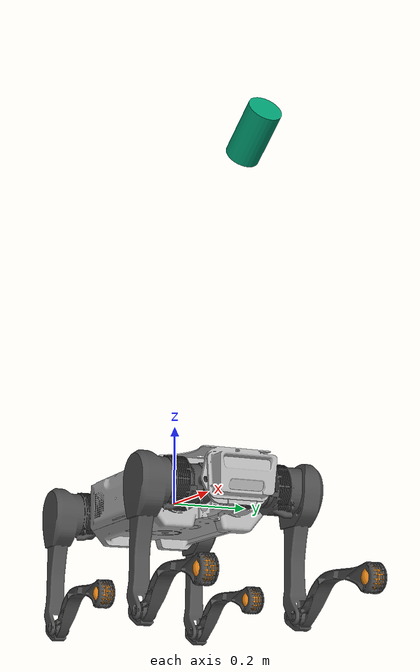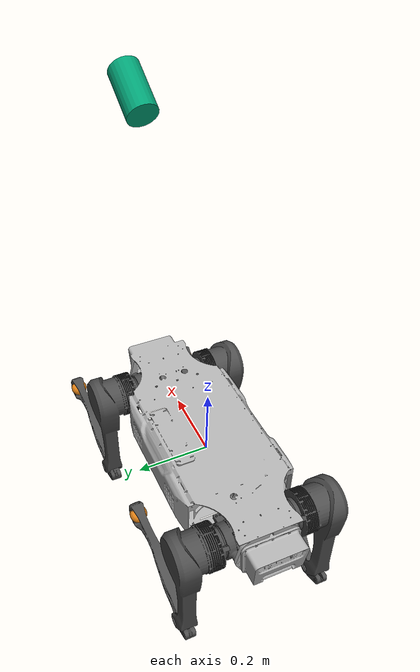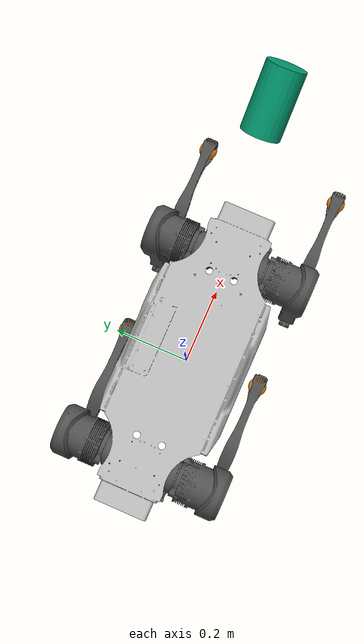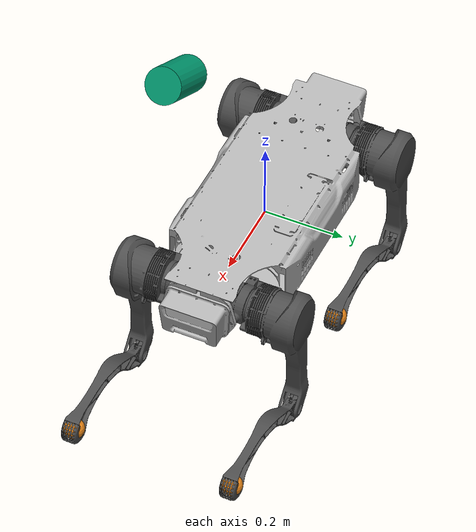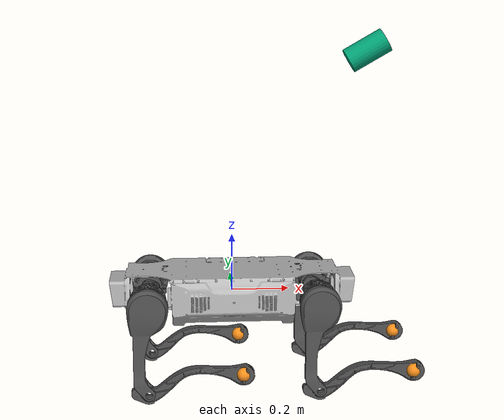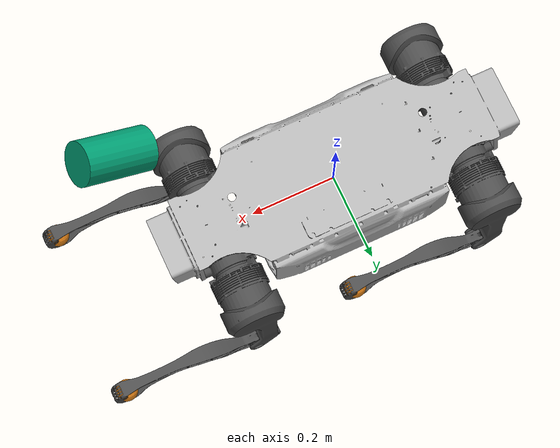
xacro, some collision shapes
<?xml version="1.0" encoding="utf-8"?>
<robot name="X20" xmlns:xacro="http://www.ros.org/wiki/xacro">
  <xacro:property name="motor_damp" value="1.2"/>
  <xacro:property name="motor_fric" value="0.1"/>

  <link
    name="BASE">
    <inertial>
      <origin
        xyz="0.005 0.000413 0.004"
        rpy="0 0 0" />
      <mass
        value="26.398" />
      <inertia ixx="0.1632" ixy="-5.2136E-05" ixz="-0.00019406" iyy="0.40648" iyz="8.2679E-05" izz="0.52596" />
    </inertial>
    <visual>
      <geometry>
        <mesh
          filename="package://legged_x20_description/meshes/x20_torso.stl" />
      </geometry>
      <material
        name="">
        <color
          rgba="0.69804 0.69804 0.69804 1" />
      </material>
    </visual>
    <collision>
      <geometry>
        <mesh
          filename="package://legged_x20_description/meshes/x20_torso.stl" />
      </geometry>
    </collision>
  </link>

  <link name="imu_link">
    <inertial>
      <mass value="0.0000001"/>
      <origin rpy="0 0 0" xyz="0 0 0"/>
      <inertia ixx="0.0000000001" ixy="0" ixz="0" iyy="0.00000000001" iyz="0" izz="0.000000001"/>
    </inertial>
  <visual>
    <origin rpy="0 0 0" xyz="0 0 0"/>
    <geometry>
      <box size="0.001 0.001 0.001"/>
    </geometry>
  </visual>
  <collision>
    <origin rpy="0 0 0" xyz="0 0 0"/>
    <geometry>
      <box size=".001 .001 .001"/>
    </geometry>
  </collision>
 </link>
 <joint name="imu_joint" type="fixed">
    <axis xyz="0 0 0"/>
    <origin xyz="0 0 0"/>
    <parent link="BASE"/>
    <child link="imu_link"/>
  </joint>

 <xacro:include filename="$(find velodyne_description)/urdf/HDL-32E.urdf.xacro"/>
  <xacro:HDL-32E parent="BASE" name="lidar_link" topic="/point_cloud2"  hz="10" samples="220" >

    <origin xyz="0.4 0 0.8" rpy="0 1.05 0" />

  </xacro:HDL-32E>

  <link name="LF_HIP">
    <inertial>
      <origin xyz="-0.00075689 -0.0089129 -5.0528E-05" />
      <mass value="1.5767" />
      <inertia ixx="0.0012141" ixy="6.1989E-06" ixz="2.8652E-06" iyy="0.0016912" iyz="3.7E-06" izz="0.0013431" />
    </inertial>
    <visual>
      <geometry>
        <mesh filename="package://legged_x20_description/meshes/x20_fl_hip.stl" />
      </geometry>
    </visual>
    <collision>
      <geometry>
        <mesh filename="package://legged_x20_description/meshes/x20_fl_hip.stl" />
      </geometry>
    </collision>
  </link>

  <joint name="LF_HAA" type="revolute">
    <origin xyz="0.292 0.08 0" />
    <parent link="BASE" />
    <child link="LF_HIP" />
    <axis xyz="1 0 0" />
    <limit
      lower="-0.38397"
      upper="0.38397"
      effort="126.1"
      velocity="12"  />
    <dynamics
      damping="${motor_damp}"
      friction="${motor_fric}" />
  </joint>

  <link name="LF_THIGH">
    <inertial>
      <origin xyz="-0.0025264 -0.022118 -0.0292" />
      <mass value="3.0063" />
      <inertia ixx="0.0058102" ixy="4.2848E-05" ixz="-3.0437E-06" iyy="0.0080686" iyz="-6.889E-05" izz="0.003874" />
    </inertial>
    <visual>
      <geometry>
        <mesh filename="package://legged_x20_description/meshes/x20_l_thigh.stl" />
      </geometry>
    </visual>
    <collision>
      <geometry>
        <mesh filename="package://legged_x20_description/meshes/x20_l_thigh.stl" />
      </geometry>
    </collision>
  </link>

  <joint name="LF_HFE" type="revolute">
    <origin xyz="0 0.12325 0" />
    <parent link="LF_HIP" />
    <child link="LF_THIGH" />
    <axis xyz="0 -1 0" />
    <limit
      lower="-2.75762"
      upper="0.48869"
      effort="111.4"
      velocity="19"/>
    <dynamics
      damping="${motor_damp}"
      friction="${motor_fric}" />
  </joint>

  <link name="LF_SHANK">
    <inertial>
      <origin xyz="0.0075224 2.5888E-05 -0.17586" />
      <mass value="0.54849" />
      <inertia ixx="0.0057" ixy="1.16E-07" ixz="0.000153" iyy="0.006" iyz="-1.12E-06" izz="0.00029" />
    </inertial>
    <visual>
      <geometry>
        <mesh filename="package://legged_x20_description/meshes/x20_shank.stl" />
      </geometry>
    </visual>
    <collision>
      <geometry>
        <mesh filename="package://legged_x20_description/meshes/x20_shank.stl" />
      </geometry>
    </collision>
  </link>

  <joint name="LF_KFE" type="revolute">
    <origin xyz="0 0 -0.3" />
    <parent link="LF_THIGH" />
    <child link="LF_SHANK" />
    <axis xyz="0 -1 0" />
    <limit
      lower="0.66322"
      upper="2.84488"
      effort="195.8"
      velocity="19"  />
    <dynamics
      damping="${motor_damp}"
      friction="${motor_fric}" />
  </joint>

  <link name="LH_HIP">
    <inertial>
      <origin xyz="0.000757 -0.009 5.053E-05" />
      <mass value="1.5767" />
      <inertia ixx="0.00121" ixy="-6.2E-06" ixz="2.9E-06" iyy="0.0017" iyz="-3.7E-06" izz="0.00134" />
    </inertial>
    <visual>
      <geometry>
        <mesh filename="package://legged_x20_description/meshes/x20_hl_hip.stl" />
      </geometry>
    </visual>
    <collision>
      <geometry>
        <mesh filename="package://legged_x20_description/meshes/x20_hl_hip.stl" />
      </geometry>
    </collision>
  </link>

  <joint name="LH_HAA" type="revolute">
    <origin xyz="-0.292 0.08 0" />
    <parent link="BASE" />
    <child link="LH_HIP" />
    <axis xyz="1 0 0" />
    <limit
      lower="-0.38397"
      upper="0.38397"
      effort="126.1"
      velocity="12"  />
    <dynamics
      damping="${motor_damp}"
      friction="${motor_fric}" />
  </joint>

  <link name="LH_THIGH">
    <inertial>
      <origin xyz="-0.0025264 -0.022118 -0.0292" />
      <mass value="3.0063" />
      <inertia ixx="0.0058102" ixy="4.2848E-05" ixz="-3.0433E-06" iyy="0.008" iyz="-6.8889E-05" izz="0.003874" />
    </inertial>
    <visual>
      <geometry>
        <mesh filename="package://legged_x20_description/meshes/x20_l_thigh.stl" />
      </geometry>
    </visual>
    <collision>
      <geometry>
        <mesh filename="package://legged_x20_description/meshes/x20_l_thigh.stl" />
      </geometry>
    </collision>
  </link>

  <joint name="LH_HFE" type="revolute">
    <origin xyz="0 0.12325 0" />
    <parent link="LH_HIP" />
    <child link="LH_THIGH" />
    <axis xyz="0 -1 0" />
    <limit
      lower="-2.75762"
      upper="0.48869"
      effort="111.4"
      velocity="19"/>
    <dynamics
      damping="${motor_damp}"
      friction="${motor_fric}" />
  </joint>

  <link name="LH_SHANK">
    <inertial>
      <origin xyz="0.0075224 2.5888E-05 -0.17586" />
      <mass value="0.54849" />
      <inertia ixx="0.0057" ixy="1.16E-07" ixz="0.000153" iyy="0.006" iyz="-1.12E-06" izz="0.00029" />
    </inertial>
    <visual>
      <geometry>
        <mesh filename="package://legged_x20_description/meshes/x20_shank.stl" />
      </geometry>
    </visual>
    <collision>
      <geometry>
        <mesh filename="package://legged_x20_description/meshes/x20_shank.stl" />
      </geometry>
    </collision>
  </link>

  <joint name="LH_KFE" type="revolute">
    <origin xyz="0 0 -0.3" />
    <parent link="LH_THIGH" />
    <child link="LH_SHANK" />
    <axis xyz="0 -1 0" />
    <limit
      lower="0.66322"
      upper="2.84488"
      effort="195.8"
      velocity="19"  />
    <dynamics
      damping="${motor_damp}"
      friction="${motor_fric}" />
  </joint>

  <link name="RF_HIP">
    <inertial>
      <origin xyz="-0.000757 0.009 5.0528E-05" />
      <mass value="1.5767" />
      <inertia ixx="0.0012141" ixy="-6.1989E-06" ixz="-2.8652E-06" iyy="0.0016912" iyz="3.7E-06" izz="0.0013431" />
    </inertial>
    <visual>
      <geometry>
        <mesh filename="package://legged_x20_description/meshes/x20_fr_hip.stl" />
      </geometry>
    </visual>
    <collision>
      <geometry>
        <mesh filename="package://legged_x20_description/meshes/x20_fr_hip.stl" />
      </geometry>
    </collision>
  </link>

  <joint name="RF_HAA" type="revolute">
    <origin xyz="0.292 -0.08 0" />
    <parent link="BASE" />
    <child link="RF_HIP" />
    <axis xyz="-1 0 0" />
    <limit
      lower="-0.38397"
      upper="0.38397"
      effort="126.1"
      velocity="12"  />
    <dynamics
      damping="${motor_damp}"
      friction="${motor_fric}" />
  </joint>

  <link name="RF_THIGH">
    <inertial>
      <origin xyz="-0.0025266 0.022119 -0.029194" />
      <mass value="3.0062" />
      <inertia ixx="0.00581" ixy="-4.2781E-05" ixz="-3.0682E-06" iyy="0.0080684" iyz="6.8812E-05" izz="0.0038739" />
    </inertial>
    <visual>
      <geometry>
        <mesh filename="package://legged_x20_description/meshes/x20_r_thigh.stl" />
      </geometry>
    </visual>
    <collision>
      <geometry>
        <mesh filename="package://legged_x20_description/meshes/x20_r_thigh.stl" />
      </geometry>
    </collision>
  </link>

  <joint name="RF_HFE" type="revolute">
    <origin xyz="0 -0.12325 0" />
    <parent link="RF_HIP" />
    <child link="RF_THIGH" />
    <axis xyz="0 -1 0" />
    <limit
      lower="-2.75762"
      upper="0.48869"
      effort="111.4"
      velocity="19"/>
    <dynamics
      damping="${motor_damp}"
      friction="${motor_fric}" />
  </joint>

  <link name="RF_SHANK">
    <inertial>
      <origin xyz="0.0075224 2.5888E-05 -0.17586" />
      <mass value="0.54849" />
      <inertia ixx="0.0057" ixy="1.16E-07" ixz="0.000153" iyy="0.006" iyz="-1.12E-06" izz="0.00029" />
    </inertial>
    <visual>
      <geometry>
        <mesh filename="package://legged_x20_description/meshes/x20_shank.stl" />
      </geometry>
    </visual>
    <collision>
      <geometry>
        <mesh filename="package://legged_x20_description/meshes/x20_shank.stl" />
      </geometry>
    </collision>
  </link>

  <joint name="RF_KFE" type="revolute">
    <origin xyz="0 0 -0.3" />
    <parent link="RF_THIGH" />
    <child link="RF_SHANK" />
    <axis xyz="0 -1 0" />
    <limit
      lower="0.66322"
      upper="2.84488"
      effort="195.8"
      velocity="19"  />
    <dynamics
      damping="${motor_damp}"
      friction="${motor_fric}" />
  </joint>

  <link name="RH_HIP">
    <inertial>
      <origin xyz="0.00075689 0.0089129 -5.0528E-05" />
      <mass value="1.5767" />
      <inertia ixx="0.0012141" ixy="6.1989E-06" ixz="-2.8652E-06" iyy="0.0016912" iyz="-3.7E-06" izz="0.0013431" />
    </inertial>
    <visual>
      <geometry>
        <mesh filename="package://legged_x20_description/meshes/x20_hr_hip.stl" />
      </geometry>
    </visual>
    <collision>
      <geometry>
        <mesh filename="package://legged_x20_description/meshes/x20_hr_hip.stl" />
      </geometry>
    </collision>
  </link>

  <joint name="RH_HAA" type="revolute">
    <origin xyz="-0.292 -0.08 0" />
    <parent link="BASE" />
    <child link="RH_HIP" />
    <axis xyz="-1 0 0" />
    <limit
      lower="-0.38397"
      upper="0.38397"
      effort="126.1"
      velocity="12"  />
    <dynamics
      damping="${motor_damp}"
      friction="${motor_fric}" />
  </joint>

  <link name="RH_THIGH">
    <inertial>
      <origin xyz="-0.0025266 0.022119 -0.029194" />
      <mass value="3.0062" />
      <inertia ixx="0.00581" ixy="-4.2781E-05" ixz="-3.0681E-06" iyy="0.0080684" iyz="6.8812E-05" izz="0.0038739" />
    </inertial>
    <visual>
      <geometry>
        <mesh filename="package://legged_x20_description/meshes/x20_r_thigh.stl" />
      </geometry>
    </visual>
    <collision>
      <geometry>
        <mesh filename="package://legged_x20_description/meshes/x20_r_thigh.stl" />
      </geometry>
    </collision>
  </link>

  <joint name="RH_HFE" type="revolute">
    <origin xyz="0 -0.12325 0" />
    <parent link="RH_HIP" />
    <child link="RH_THIGH" />
    <axis xyz="0 -1 0" />
    <limit
      lower="-2.75762"
      upper="0.48869"
      effort="111.4"
      velocity="19"/>
    <dynamics
      damping="${motor_damp}"
      friction="${motor_fric}" />
  </joint>

  <link name="RH_SHANK">
    <inertial>
      <origin xyz="0.0075224 2.589E-05 -0.17586" />
      <mass value="0.54849" />
      <inertia ixx="0.0056981" ixy="1.1608E-07" ixz="0.00015292" iyy="0.0059026" iyz="-1.1243E-06" izz="0.00028822" />
    </inertial>
    <visual>
      <geometry>
        <mesh filename="package://legged_x20_description/meshes/x20_shank.stl" />
      </geometry>
    </visual>
    <collision>
      <geometry>
        <mesh filename="package://legged_x20_description/meshes/x20_shank.stl" />
      </geometry>
    </collision>
  </link>

  <joint name="RH_KFE" type="revolute">
    <origin xyz="0 0 -0.3" />
    <parent link="RH_THIGH" />
    <child link="RH_SHANK" />
    <axis xyz="0 -1 0" />
    <limit
      lower="0.66322"
      upper="2.84488"
      effort="195.8"
      velocity="19"  />
    <dynamics
      damping="${motor_damp}"
      friction="${motor_fric}" />
  </joint>

  <joint name = "LF_FOOT_joint" type = "fixed">
    <origin xyz="0 0 -0.33" rpy = "0 0 0"/>
    <parent link="LF_SHANK"/>
    <child link = "LF_FOOT"/>
  </joint>

  <joint name = "LH_FOOT_joint" type = "fixed">
    <origin xyz="0 0 -0.33" rpy = "0 0 0"/>
    <parent link="LH_SHANK"/>
    <child link = "LH_FOOT"/>
  </joint>

  <joint name = "RF_FOOT_joint" type = "fixed">
    <origin xyz="0 0 -0.33" rpy = "0 0 0"/>
    <parent link="RF_SHANK"/>
    <child link = "RF_FOOT"/>
  </joint>

  <joint name = "RH_FOOT_joint" type = "fixed">
    <origin xyz="0 0 -0.33" rpy = "0 0 0"/>
    <parent link="RH_SHANK"/>
    <child link = "RH_FOOT"/>
  </joint>

  <xacro:property name="foot_mass" value="0.001"/>
  <xacro:property name="foot_radius" value="0.036"/>
  <xacro:macro name="setup_foot" params="link_name">
    <link name="${link_name}">
        <visual>
            <origin rpy="0 0 0" xyz="0 0 0"/>
            <geometry>
                <sphere radius="${foot_radius-0.01}"/>
            </geometry>
            <material name="orange"/>
        </visual>
        <collision>
            <origin rpy="0 0 0" xyz="0 0 0"/>
            <geometry>
                <sphere radius="${foot_radius}"/>
            </geometry>
        </collision>
        <inertial>
            <mass value="${foot_mass}"/>
            <inertia
                    ixx="${(2*foot_mass)/5.0*(foot_radius*foot_radius)}" ixy="0.0" ixz="0.0"
                    iyy="${(2*foot_mass)/5.0*(foot_radius*foot_radius)}" iyz="0.0"
                    izz="${(2*foot_mass)/5.0*(foot_radius*foot_radius)}"/>
        </inertial>
    </link>
    <gazebo reference="${link_name}_joint">
      <disableFixedJointLumping>true</disableFixedJointLumping>
    </gazebo>
    <gazebo reference="${link_name}">
        <mu1>0.8</mu1>
        <mu2>0.8</mu2>
        <self_collide>1</self_collide>
        <material>Gazebo/DarkGrey</material>
        <kp value="1000000.0"/>
        <kd value="100.0"/>
    </gazebo>
  </xacro:macro>

  <xacro:setup_foot link_name="LF_FOOT"/>
  <xacro:setup_foot link_name="LH_FOOT"/>
  <xacro:setup_foot link_name="RF_FOOT"/>
  <xacro:setup_foot link_name="RH_FOOT"/>

    <!-- ros_control plugin -->
  <gazebo reference="BASE">
    <material>Gazebo/Blue</material>
  </gazebo>

  <gazebo reference="RH_SHANK">
    <material>Gazebo/Orange</material>
  </gazebo>

  <gazebo reference="LH_SHANK">
    <material>Gazebo/Orange</material>
  </gazebo>

  <gazebo reference="RF_SHANK">
    <material>Gazebo/Orange</material>
  </gazebo>

  <gazebo reference="LF_SHANK">
    <material>Gazebo/Orange</material>
  </gazebo>

  <gazebo reference="RH_THIGH">
    <material>Gazebo/Green</material>
  </gazebo>

  <gazebo reference="LH_THIGH">
    <material>Gazebo/Green</material>
  </gazebo>

  <gazebo reference="RF_THIGH">
    <material>Gazebo/Green</material>
  </gazebo>

  <gazebo reference="LF_THIGH">
    <material>Gazebo/Green</material>
  </gazebo>

  <!-- Gazebo requires the velodyne_gazebo_plugins package -->

  <!-- Joint 'implicitSpringDamper' setup, according to official website's suggestion-->

  <!-- Link setup-->
  <xacro:macro name="link_setup_block" params="link_name">
    <gazebo reference="${link_name}">
      <mu1>0.6</mu1>
      <mu2>0.6</mu2>
      <self_collide>1</self_collide>
      <material>Gazebo/DarkGrey</material>
      <kp value="1000000.0"/>
      <kd value="100.0"/>
    </gazebo>
  </xacro:macro>
  <xacro:link_setup_block link_name="LF_SHANK"/>
  <xacro:link_setup_block link_name="LH_SHANK"/>
  <xacro:link_setup_block link_name="RF_SHANK"/>
  <xacro:link_setup_block link_name="RH_SHANK"/>

  <xacro:macro name="link_setup_block_hip" params="link_name">
    <gazebo reference="${link_name}">
      <mu1>0.2</mu1>
      <mu2>0.2</mu2>
      <material>Gazebo/DarkGrey</material>
    </gazebo>
  </xacro:macro>
  <xacro:macro name="link_setup_block_thight" params="link_name">
    <gazebo reference="${link_name}">
      <mu1>0.2</mu1>
      <mu2>0.2</mu2>
      <self_collide>0</self_collide>
      <material>Gazebo/DarkGrey</material>
      <kp value="1000000.0"/>
      <kd value="100.0"/>
    </gazebo>
  </xacro:macro>
  <xacro:link_setup_block_hip link_name="LF_HIP"/>
  <xacro:link_setup_block_thight link_name="LF_THIGH"/>
  <xacro:link_setup_block_hip link_name="RF_HIP"/>
  <xacro:link_setup_block_thight link_name="RF_THIGH"/>
  <xacro:link_setup_block_hip link_name="LH_HIP"/>
  <xacro:link_setup_block_thight link_name="LH_THIGH"/>
  <xacro:link_setup_block_hip link_name="RH_HIP"/>
  <xacro:link_setup_block_thight link_name="RH_THIGH"/>

</robot>

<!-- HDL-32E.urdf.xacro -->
<robot xmlns:xacro="http://www.ros.org/wiki/xacro" name="HDL-32E">
  <xacro:property name="M_PI" value="3.1415926535897931" />
  <xacro:macro name="HDL-32E" params="*origin parent:=base_link name:=velodyne tf_prefix:='' topic:=/velodyne_points organize_cloud:=false hz:=10 lasers:=32 samples:=2187 collision_range:=0.3 min_range:=0.9 max_range:=130.0 noise:=0.008 min_angle:=-${M_PI} max_angle:=${M_PI} gpu:=false">

    <joint name="${name}_base_mount_joint" type="fixed">
      <xacro:insert_block name="origin" />
      <parent link="${parent}"/>
      <child link="${name}_base_link"/>
    </joint>

    <link name="${name}_base_link">
      <inertial>
        <mass value="1.0"/>
        <origin xyz="0 0 0.07212"/>
        <inertia ixx="${(1.0 * (3.0*0.04267*0.04267 + 0.14424*0.14424)) / 12.0}" ixy="0" ixz="0"
          iyy="${(1.0 * (3.0*0.04267*0.04267 + 0.14424*0.14424)) / 12.0}" iyz="0"
          izz="${0.5 * 1.0 * (0.04267*0.04267)}"/>
      </inertial>
      <visual>
        <geometry>
          <mesh filename="package://velodyne_description/meshes/HDL32E_base.dae" />
        </geometry>
      </visual>
      <collision>
        <origin rpy="0 0 0" xyz="0 0 0.07212"/>
        <geometry>
          <cylinder radius="0.04267" length="0.14424"/>
        </geometry>
      </collision>
    </link>

    <joint name="${name}_base_scan_joint" type="fixed" >
      <origin xyz="0 0 0.09081" rpy="0 0 0" />
      <parent link="${name}_base_link" />
      <child link="${name}"/>
    </joint>

    <link name="${name}">
      <inertial>
        <mass value="0.01"/>
        <origin xyz="0 0 0"/>
        <inertia ixx="1e-7" ixy="0" ixz="0" iyy="1e-7" iyz="0" izz="1e-7"/>
      </inertial>
      <visual>
        <origin xyz="0 0 -0.09081" rpy="0 0 0" />
        <geometry>
          <mesh filename="package://velodyne_description/meshes/HDL32E_scan.dae" />
        </geometry>
      </visual>
      <collision>
        <geometry>
          <sphere radius="0"/>
        </geometry>
      </collision>
    </link>

    <!-- Gazebo requires the velodyne_gazebo_plugins package -->
    <gazebo reference="${name}">
      <xacro:if value="${gpu}">
        <sensor type="gpu_ray" name="${name}-HDL32E">
          <pose>0 0 0 0 0 0</pose>
          <visualize>false</visualize>
          <update_rate>${hz}</update_rate>
          <ray>
            <scan>
              <horizontal>
                <samples>${samples}</samples>
                <resolution>1</resolution>
                <min_angle>${min_angle}</min_angle>
                <max_angle>${max_angle}</max_angle>
              </horizontal>
              <vertical>
                <samples>${lasers}</samples>
                <resolution>1</resolution>
                <min_angle>-${5.0*M_PI/180.0}</min_angle>
                <max_angle> ${85.0*M_PI/180.0}</max_angle>
              </vertical>
            </scan>
            <range>
              <min>${collision_range}</min>
              <max>${max_range+1}</max>
              <resolution>0.001</resolution>
            </range>
            <noise>
              <type>gaussian</type>
              <mean>0.0</mean>
              <stddev>0.0</stddev>
            </noise>
          </ray>
          <plugin name="gazebo_ros_laser_controller" filename="libgazebo_ros_velodyne_laser.so">
            <ros>
              <namespace>/${name}</namespace>
              <remapping>~/out:=${topic}</remapping>
            </ros>
            <tf_prefix>${tf_prefix}</tf_prefix>
            <frame_name>${name}</frame_name>
            <organize_cloud>${organize_cloud}</organize_cloud>
            <min_range>${min_range}</min_range>
            <max_range>${max_range}</max_range>
            <gaussian_noise>${noise}</gaussian_noise>
          </plugin>
        </sensor>
      </xacro:if>
      <xacro:unless value="${gpu}">
        <sensor type="ray" name="${name}-HDL32E">
          <pose>0 0 0 0 0 0</pose>
          <visualize>false</visualize>
          <update_rate>${hz}</update_rate>
          <ray>
            <scan>
              <horizontal>
                <samples>${samples}</samples>
                <resolution>1</resolution>
                <min_angle>${min_angle}</min_angle>
                <max_angle>${max_angle}</max_angle>
              </horizontal>
              <vertical>
                <samples>${lasers}</samples>
                <resolution>1</resolution>
                <min_angle>-${5.0*M_PI/180.0}</min_angle>
                <max_angle> ${85.0*M_PI/180.0}</max_angle>
              </vertical>
            </scan>
            <range>
              <min>${collision_range}</min>
              <max>${max_range+1}</max>
              <resolution>0.001</resolution>
            </range>
            <noise>
              <type>gaussian</type>
              <mean>0.0</mean>
              <stddev>0.0</stddev>
            </noise>
          </ray>
          <plugin name="gazebo_ros_laser_controller" filename="libgazebo_ros_velodyne_laser.so">
            <ros>
              <namespace>/${name}</namespace>
              <remapping>~/out:=${topic}</remapping>
            </ros>
            <tf_prefix>${tf_prefix}</tf_prefix>
            <frame_name>${name}</frame_name>
            <organize_cloud>${organize_cloud}</organize_cloud>
            <min_range>${min_range}</min_range>
            <max_range>${max_range}</max_range>
            <gaussian_noise>${noise}</gaussian_noise>
          </plugin>
        </sensor>
      </xacro:unless>
    </gazebo>

  </xacro:macro>
</robot>
